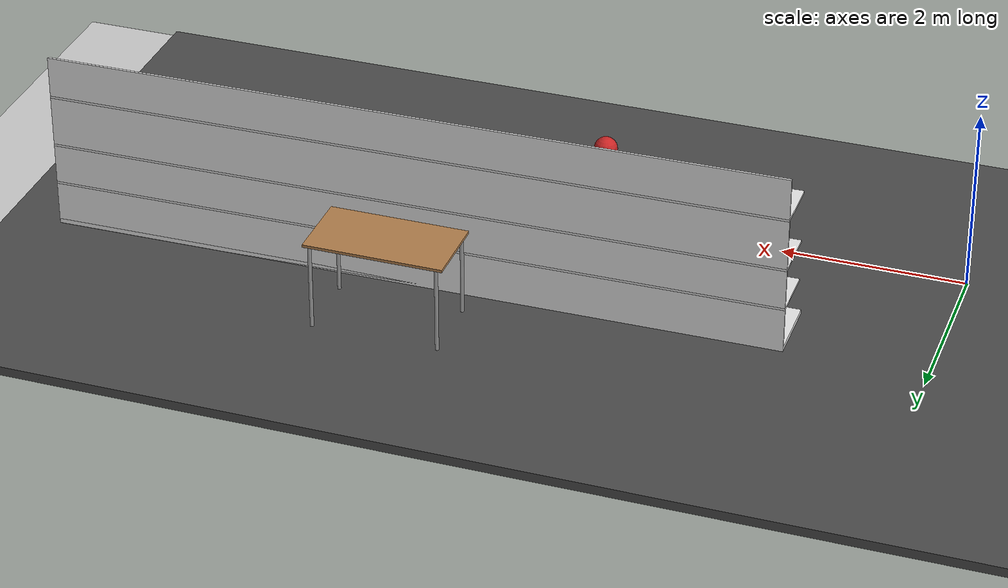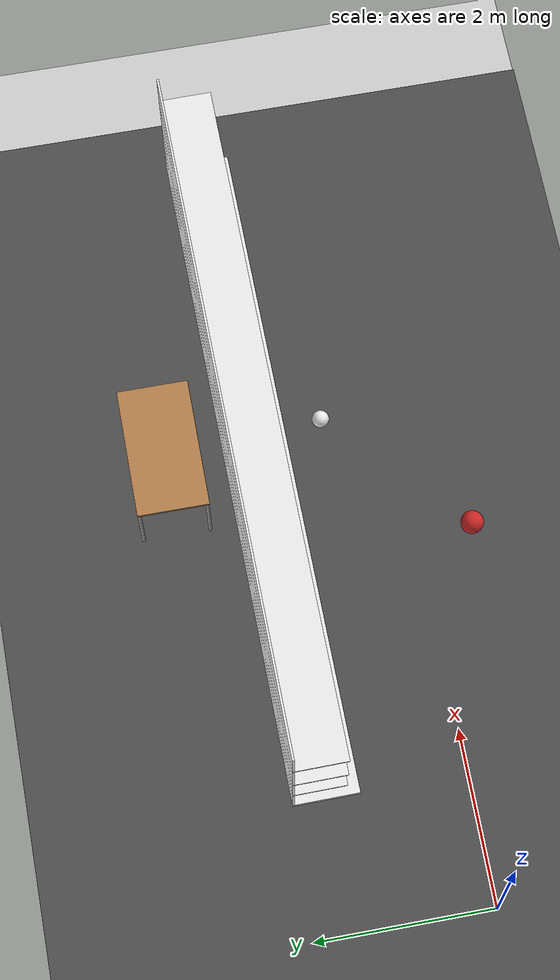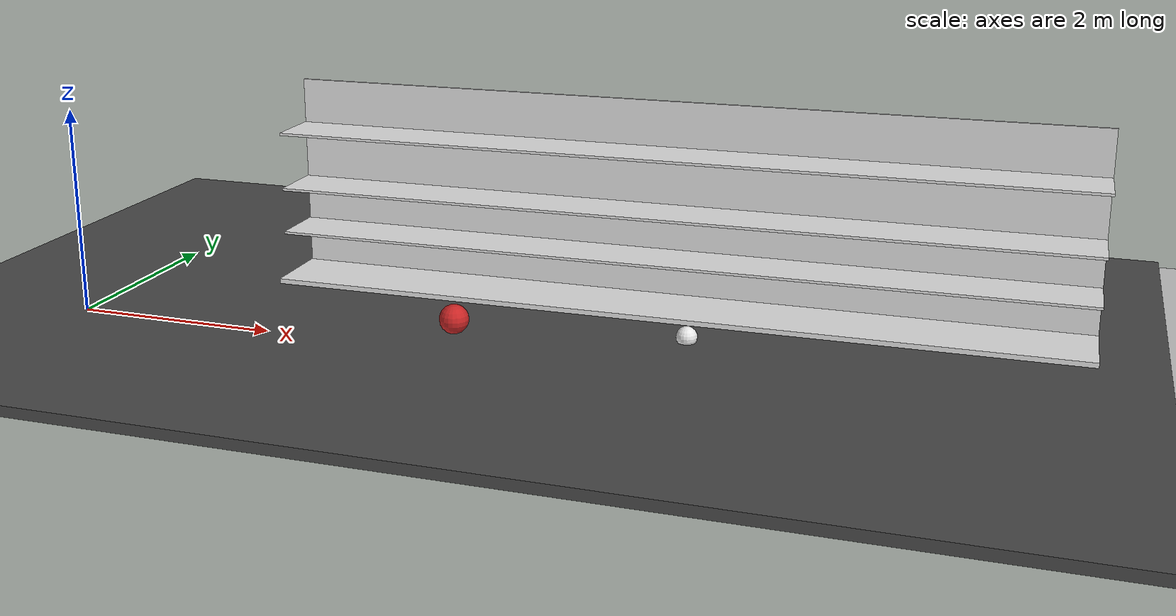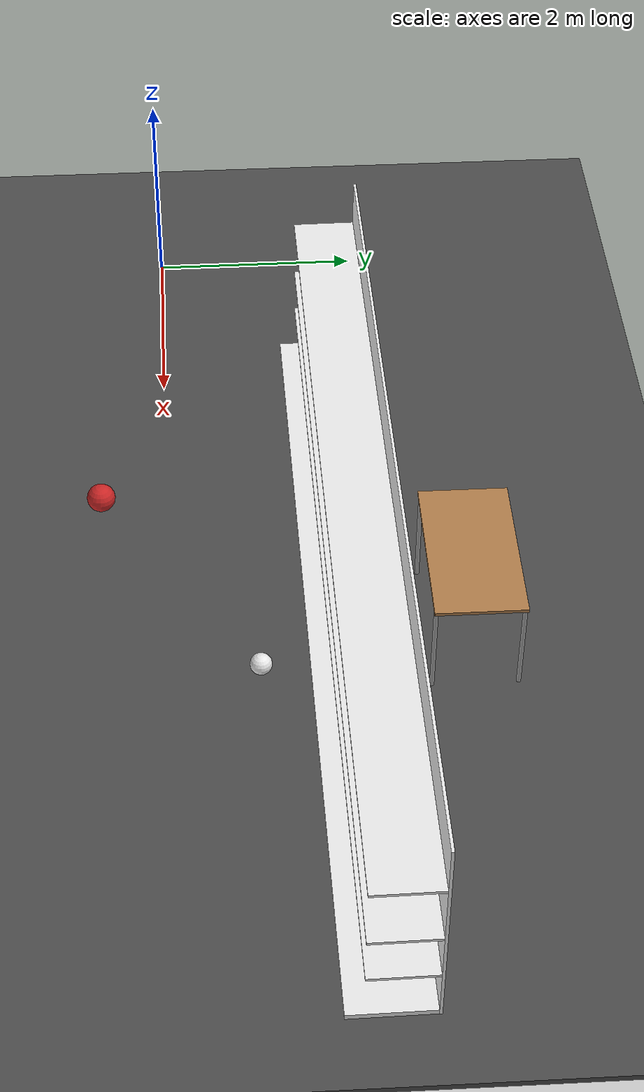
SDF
<sdf version="1.6">
 <world name="default">
  <model name="ground_plane">
   <static>1</static>
   <link name="link">
    <collision name="collision">
     <geometry><plane><normal>0 0 1</normal><size>100 100</size></plane></geometry>
     <surface>
      <contact><collide_bitmask>65535</collide_bitmask></contact>
      <friction><ode><mu>100</mu><mu2>50</mu2></ode></friction>
     </surface>
    </collision>
    <visual name="visual">
     <cast_shadows>0</cast_shadows>
     <geometry><plane><normal>0 0 1</normal><size>100 100</size></plane></geometry>
     <material>
      <script><uri>file://media/materials/scripts/gazebo.material</uri><name>Gazebo/Grey</name></script>
     </material>
    </visual>
   </link>
  </model>
  <model name="asphalt_plane">
   <static>1</static>
   <link name="link">
    <collision name="collision"><geometry><box><size>20 23.3157 0.1</size></box></geometry></collision>
    <visual name="visual">
     <cast_shadows>0</cast_shadows>
     <geometry><box><size>20 23.3157 0.1</size></box></geometry>
     <material>
      <script>
       <uri>model://asphalt_plane/materials/scripts</uri>
       <uri>model://asphalt_plane/materials/textures</uri>
       <name>vrc/asphalt</name>
      </script>
     </material>
    </visual>
   </link>
   <pose>0.082168 -0.989597 0 0 -0 0</pose>
  </model>
  <model name="LongShelfx4_clone">
   <link name="link_0">
    <inertial>
     <mass>0.38468</mass>
     <inertia>
      <ixx>0.0321196</ixx>
      <ixy>0</ixy>
      <ixz>0</ixz>
      <iyy>2.41752</iyy>
      <iyz>0</iyz>
      <izz>2.44951</izz>
     </inertia>
    </inertial>
    <pose>-4.95428 0.681381 -0.638013 0 -0 0</pose>
    <visual name="visual">
     <geometry><box><size>8 0.75 0.05</size></box></geometry>
     <material>
      <lighting>1</lighting>
      <script><uri>file://media/materials/scripts/gazebo.material</uri><name>Gazebo/White</name></script>
      <shader type="vertex"><normal_map>__default__</normal_map></shader>
      <ambient>0.3 0.3 0.3 1</ambient>
      <diffuse>0.7 0.7 0.7 1</diffuse>
      <specular>0.01 0.01 0.01 1</specular>
      <emissive>0 0 0 1</emissive>
     </material>
    </visual>
    <collision name="collision">
     <geometry><box><size>8 0.75 0.05</size></box></geometry>
     <surface>
      <friction>
       <ode><mu>1</mu><mu2>1</mu2><fdir1>0 0 0</fdir1><slip1>0</slip1><slip2>0</slip2></ode>
       <torsional>
        <coefficient>1</coefficient>
        <patch_radius>0</patch_radius>
        <surface_radius>0</surface_radius>
        <use_patch_radius>1</use_patch_radius>
        <ode><slip>0</slip></ode>
       </torsional>
      </friction>
      <bounce><restitution_coefficient>0</restitution_coefficient><threshold>1e+06</threshold></bounce>
      <contact>
       <collide_without_contact>0</collide_without_contact>
       <collide_without_contact_bitmask>1</collide_without_contact_bitmask>
       <collide_bitmask>1</collide_bitmask>
       <ode>
        <soft_cfm>0</soft_cfm>
        <soft_erp>0.2</soft_erp>
        <kp>1e+13</kp>
        <kd>1</kd>
        <max_vel>0.01</max_vel>
        <min_depth>0</min_depth>
       </ode>
       <bullet>
        <split_impulse>1</split_impulse>
        <split_impulse_penetration_threshold>-0.01</split_impulse_penetration_threshold>
        <soft_cfm>0</soft_cfm>
        <soft_erp>0.2</soft_erp>
        <kp>1e+13</kp>
        <kd>1</kd>
       </bullet>
      </contact>
     </surface>
    </collision>
   </link>
   <link name="link_1">
    <inertial>
     <mass>0.748605</mass>
     <inertia><ixx>0.445095</ixx><ixy>0</ixy><ixz>0</ixz><iyy>5.12268</iyy><iyz>0</iyz><izz>4.67771</izz></inertia>
    </inertial>
    <pose>-4.95468 0.318881 0.335328 0 -0 0</pose>
    <visual name="visual">
     <geometry><box><size>8 0.025 2</size></box></geometry>
     <material>
      <lighting>1</lighting>
      <script><uri>file://media/materials/scripts/gazebo.material</uri><name>Gazebo/White</name></script>
      <shader type="vertex"><normal_map>__default__</normal_map></shader>
      <ambient>0.3 0.3 0.3 1</ambient>
      <diffuse>0.7 0.7 0.7 1</diffuse>
      <specular>0.01 0.01 0.01 1</specular>
      <emissive>0 0 0 1</emissive>
     </material>
    </visual>
    <collision name="collision">
     <geometry><box><size>8 0.025 2</size></box></geometry>
     <surface>
      <friction>
       <ode><mu>1</mu><mu2>1</mu2><fdir1>0 0 0</fdir1><slip1>0</slip1><slip2>0</slip2></ode>
       <torsional>
        <coefficient>1</coefficient>
        <patch_radius>0</patch_radius>
        <surface_radius>0</surface_radius>
        <use_patch_radius>1</use_patch_radius>
        <ode><slip>0</slip></ode>
       </torsional>
      </friction>
      <bounce><restitution_coefficient>0</restitution_coefficient><threshold>1e+06</threshold></bounce>
      <contact>
       <collide_without_contact>0</collide_without_contact>
       <collide_without_contact_bitmask>1</collide_without_contact_bitmask>
       <collide_bitmask>1</collide_bitmask>
       <ode>
        <soft_cfm>0</soft_cfm>
        <soft_erp>0.2</soft_erp>
        <kp>1e+13</kp>
        <kd>1</kd>
        <max_vel>0.01</max_vel>
        <min_depth>0</min_depth>
       </ode>
       <bullet>
        <split_impulse>1</split_impulse>
        <split_impulse_penetration_threshold>-0.01</split_impulse_penetration_threshold>
        <soft_cfm>0</soft_cfm>
        <soft_erp>0.2</soft_erp>
        <kp>1e+13</kp>
        <kd>1</kd>
       </bullet>
      </contact>
     </surface>
    </collision>
   </link>
   <link name="link_2">
    <inertial>
     <mass>0.0597214</mass>
     <inertia>
      <ixx>0.00742007</ixx>
      <ixy>0</ixy>
      <ixz>0</ixz>
      <iyy>0.00498871</iyy>
      <iyz>0</iyz>
      <izz>0.0123849</izz>
     </inertia>
    </inertial>
    <pose>-4.95438 0.606368 0.295639 0 -0 0</pose>
    <visual name="visual">
     <geometry><box><size>8 0.6 0.025</size></box></geometry>
     <material>
      <lighting>1</lighting>
      <script><uri>file://media/materials/scripts/gazebo.material</uri><name>Gazebo/White</name></script>
      <shader type="vertex"><normal_map>__default__</normal_map></shader>
      <ambient>0.3 0.3 0.3 1</ambient>
      <diffuse>0.7 0.7 0.7 1</diffuse>
      <specular>0.01 0.01 0.01 1</specular>
      <emissive>0 0 0 1</emissive>
     </material>
    </visual>
    <collision name="collision">
     <geometry><box><size>8 0.600001 0.025</size></box></geometry>
     <surface>
      <friction>
       <ode><mu>1</mu><mu2>1</mu2><fdir1>0 0 0</fdir1><slip1>0</slip1><slip2>0</slip2></ode>
       <torsional>
        <coefficient>1</coefficient>
        <patch_radius>0</patch_radius>
        <surface_radius>0</surface_radius>
        <use_patch_radius>1</use_patch_radius>
        <ode><slip>0</slip></ode>
       </torsional>
      </friction>
      <bounce><restitution_coefficient>0</restitution_coefficient><threshold>1e+06</threshold></bounce>
      <contact>
       <collide_without_contact>0</collide_without_contact>
       <collide_without_contact_bitmask>1</collide_without_contact_bitmask>
       <collide_bitmask>1</collide_bitmask>
       <ode>
        <soft_cfm>0</soft_cfm>
        <soft_erp>0.2</soft_erp>
        <kp>1e+13</kp>
        <kd>1</kd>
        <max_vel>0.01</max_vel>
        <min_depth>0</min_depth>
       </ode>
       <bullet>
        <split_impulse>1</split_impulse>
        <split_impulse_penetration_threshold>-0.01</split_impulse_penetration_threshold>
        <soft_cfm>0</soft_cfm>
        <soft_erp>0.2</soft_erp>
        <kp>1e+13</kp>
        <kd>1</kd>
       </bullet>
      </contact>
     </surface>
    </collision>
   </link>
   <link name="link_2_clone">
    <inertial>
     <mass>0.0597214</mass>
     <inertia>
      <ixx>0.00742007</ixx>
      <ixy>0</ixy>
      <ixz>0</ixz>
      <iyy>0.00498871</iyy>
      <iyz>0</iyz>
      <izz>0.0123849</izz>
     </inertia>
    </inertial>
    <pose>-4.95438 0.606361 0.871858 0 -0 0</pose>
    <visual name="visual">
     <geometry><box><size>8 0.6 0.025</size></box></geometry>
     <material>
      <lighting>1</lighting>
      <script><uri>file://media/materials/scripts/gazebo.material</uri><name>Gazebo/White</name></script>
      <shader type="vertex"><normal_map>__default__</normal_map></shader>
      <ambient>0.3 0.3 0.3 1</ambient>
      <diffuse>0.7 0.7 0.7 1</diffuse>
      <specular>0.01 0.01 0.01 1</specular>
      <emissive>0 0 0 1</emissive>
     </material>
    </visual>
    <collision name="collision">
     <geometry><box><size>8 0.600001 0.025</size></box></geometry>
     <surface>
      <friction>
       <ode><mu>1</mu><mu2>1</mu2><fdir1>0 0 0</fdir1><slip1>0</slip1><slip2>0</slip2></ode>
       <torsional>
        <coefficient>1</coefficient>
        <patch_radius>0</patch_radius>
        <surface_radius>0</surface_radius>
        <use_patch_radius>1</use_patch_radius>
        <ode><slip>0</slip></ode>
       </torsional>
      </friction>
      <bounce><restitution_coefficient>0</restitution_coefficient><threshold>1e+06</threshold></bounce>
      <contact>
       <collide_without_contact>0</collide_without_contact>
       <collide_without_contact_bitmask>1</collide_without_contact_bitmask>
       <collide_bitmask>1</collide_bitmask>
       <ode>
        <soft_cfm>0</soft_cfm>
        <soft_erp>0.2</soft_erp>
        <kp>1e+13</kp>
        <kd>1</kd>
        <max_vel>0.01</max_vel>
        <min_depth>0</min_depth>
       </ode>
       <bullet>
        <split_impulse>1</split_impulse>
        <split_impulse_penetration_threshold>-0.01</split_impulse_penetration_threshold>
        <soft_cfm>0</soft_cfm>
        <soft_erp>0.2</soft_erp>
        <kp>1e+13</kp>
        <kd>1</kd>
       </bullet>
      </contact>
     </surface>
    </collision>
   </link>
   <link name="link_2_clone_0">
    <inertial>
     <mass>0.0597214</mass>
     <inertia>
      <ixx>0.00742007</ixx>
      <ixy>0</ixy>
      <ixz>0</ixz>
      <iyy>0.00498871</iyy>
      <iyz>0</iyz>
      <izz>0.0123849</izz>
     </inertia>
    </inertial>
    <pose>-4.95438 0.606375 -0.163574 0 -0 0</pose>
    <visual name="visual">
     <geometry><box><size>8 0.6 0.025</size></box></geometry>
     <material>
      <lighting>1</lighting>
      <script><uri>file://media/materials/scripts/gazebo.material</uri><name>Gazebo/White</name></script>
      <shader type="vertex"><normal_map>__default__</normal_map></shader>
      <ambient>0.3 0.3 0.3 1</ambient>
      <diffuse>0.7 0.7 0.7 1</diffuse>
      <specular>0.01 0.01 0.01 1</specular>
      <emissive>0 0 0 1</emissive>
     </material>
    </visual>
    <collision name="collision">
     <geometry><box><size>8 0.600001 0.025</size></box></geometry>
     <surface>
      <friction>
       <ode><mu>1</mu><mu2>1</mu2><fdir1>0 0 0</fdir1><slip1>0</slip1><slip2>0</slip2></ode>
       <torsional>
        <coefficient>1</coefficient>
        <patch_radius>0</patch_radius>
        <surface_radius>0</surface_radius>
        <use_patch_radius>1</use_patch_radius>
        <ode><slip>0</slip></ode>
       </torsional>
      </friction>
      <bounce><restitution_coefficient>0</restitution_coefficient><threshold>1e+06</threshold></bounce>
      <contact>
       <collide_without_contact>0</collide_without_contact>
       <collide_without_contact_bitmask>1</collide_without_contact_bitmask>
       <collide_bitmask>1</collide_bitmask>
       <ode>
        <soft_cfm>0</soft_cfm>
        <soft_erp>0.2</soft_erp>
        <kp>1e+13</kp>
        <kd>1</kd>
        <max_vel>0.01</max_vel>
        <min_depth>0</min_depth>
       </ode>
       <bullet>
        <split_impulse>1</split_impulse>
        <split_impulse_penetration_threshold>-0.01</split_impulse_penetration_threshold>
        <soft_cfm>0</soft_cfm>
        <soft_erp>0.2</soft_erp>
        <kp>1e+13</kp>
        <kd>1</kd>
       </bullet>
      </contact>
     </surface>
    </collision>
   </link>
   <joint name="link_1_JOINT_4" type="fixed">
    <parent>link_1</parent>
    <child>link_0</child>
    <physics>
     <ode><limit><cfm>0</cfm><erp>0.2</erp></limit><suspension><cfm>0</cfm><erp>0.2</erp></suspension></ode>
    </physics>
   </joint>
   <joint name="link_1_JOINT_5" type="fixed">
    <parent>link_1</parent>
    <child>link_2_clone_0</child>
    <physics>
     <ode><limit><cfm>0</cfm><erp>0.2</erp></limit><suspension><cfm>0</cfm><erp>0.2</erp></suspension></ode>
    </physics>
   </joint>
   <joint name="link_1_JOINT_6" type="fixed">
    <parent>link_1</parent>
    <child>link_2</child>
    <physics>
     <ode><limit><cfm>0</cfm><erp>0.2</erp></limit><suspension><cfm>0</cfm><erp>0.2</erp></suspension></ode>
    </physics>
   </joint>
   <joint name="link_1_JOINT_7" type="fixed">
    <parent>link_1</parent>
    <child>link_2_clone</child>
    <physics>
     <ode><limit><cfm>0</cfm><erp>0.2</erp></limit><suspension><cfm>0</cfm><erp>0.2</erp></suspension></ode>
    </physics>
   </joint>
   <static>0</static>
   <pose>0.51368 2.24347 0.715429 -0.002288 0 -3.131</pose>
  </model>
  <model name="table_clone_0">
   <static>1</static>
   <link name="link">
    <collision name="surface">
     <pose>0 0 1 0 -0 0</pose>
     <geometry><box><size>1.5 0.8 0.03</size></box></geometry>
     <surface><friction><ode><mu>0.6</mu><mu2>0.6</mu2></ode></friction></surface>
    </collision>
    <visual name="visual1">
     <pose>0 0 1 0 -0 0</pose>
     <geometry><box><size>1.5 0.8 0.03</size></box></geometry>
     <material>
      <script><uri>file://media/materials/scripts/gazebo.material</uri><name>Gazebo/Wood</name></script>
     </material>
    </visual>
    <collision name="front_left_leg">
     <pose>0.68 0.38 0.5 0 -0 0</pose>
     <geometry><cylinder><radius>0.02</radius><length>1</length></cylinder></geometry>
    </collision>
    <visual name="front_left_leg">
     <pose>0.68 0.38 0.5 0 -0 0</pose>
     <geometry><cylinder><radius>0.02</radius><length>1</length></cylinder></geometry>
     <material>
      <script><uri>file://media/materials/scripts/gazebo.material</uri><name>Gazebo/Grey</name></script>
     </material>
    </visual>
    <collision name="front_right_leg">
     <pose>0.68 -0.38 0.5 0 -0 0</pose>
     <geometry><cylinder><radius>0.02</radius><length>1</length></cylinder></geometry>
    </collision>
    <visual name="front_right_leg">
     <pose>0.68 -0.38 0.5 0 -0 0</pose>
     <geometry><cylinder><radius>0.02</radius><length>1</length></cylinder></geometry>
     <material>
      <script><uri>file://media/materials/scripts/gazebo.material</uri><name>Gazebo/Grey</name></script>
     </material>
    </visual>
    <collision name="back_right_leg">
     <pose>-0.68 -0.38 0.5 0 -0 0</pose>
     <geometry><cylinder><radius>0.02</radius><length>1</length></cylinder></geometry>
    </collision>
    <visual name="back_right_leg">
     <pose>-0.68 -0.38 0.5 0 -0 0</pose>
     <geometry><cylinder><radius>0.02</radius><length>1</length></cylinder></geometry>
     <material>
      <script><uri>file://media/materials/scripts/gazebo.material</uri><name>Gazebo/Grey</name></script>
     </material>
    </visual>
    <collision name="back_left_leg">
     <pose>-0.68 0.38 0.5 0 -0 0</pose>
     <geometry><cylinder><radius>0.02</radius><length>1</length></cylinder></geometry>
    </collision>
    <visual name="back_left_leg">
     <pose>-0.68 0.38 0.5 0 -0 0</pose>
     <geometry><cylinder><radius>0.02</radius><length>1</length></cylinder></geometry>
     <material>
      <script><uri>file://media/materials/scripts/gazebo.material</uri><name>Gazebo/Grey</name></script>
     </material>
    </visual>
   </link>
   <pose>5.46734 2.66741 0 0 -0 0</pose>
  </model>
  <model name="my_ball">
   <link name="link">
    <inertial>
     <mass>1</mass>
     <inertia><ixx>0.1</ixx><ixy>0</ixy><ixz>0</ixz><iyy>0.1</iyy><iyz>0</iyz><izz>0.1</izz></inertia>
    </inertial>
    <visual name="visual">
     <geometry><sphere><radius>0.1</radius></sphere></geometry>
     <material>
      <script><name>Gazebo/White</name><uri>file://media/materials/scripts/gazebo.material</uri></script>
      <shader type="vertex"><normal_map>__default__</normal_map></shader>
      <ambient>1 1 1 1</ambient>
      <diffuse>1 1 1 1</diffuse>
      <specular>1 1 1 1</specular>
      <emissive>1 1 1 1</emissive>
     </material>
    </visual>
    <collision name="collision">
     <geometry><sphere><radius>0.1</radius></sphere></geometry>
     <surface>
      <friction>
       <ode><mu>1</mu><mu2>1</mu2><fdir1>0 0 0</fdir1><slip1>0</slip1><slip2>0</slip2></ode>
       <torsional>
        <coefficient>1</coefficient>
        <patch_radius>0</patch_radius>
        <surface_radius>0</surface_radius>
        <use_patch_radius>1</use_patch_radius>
        <ode><slip>0</slip></ode>
       </torsional>
      </friction>
      <bounce><restitution_coefficient>0</restitution_coefficient><threshold>1e+06</threshold></bounce>
      <contact>
       <collide_without_contact>0</collide_without_contact>
       <collide_without_contact_bitmask>1</collide_without_contact_bitmask>
       <collide_bitmask>1</collide_bitmask>
       <ode>
        <soft_cfm>0</soft_cfm>
        <soft_erp>0.2</soft_erp>
        <kp>1e+13</kp>
        <kd>1</kd>
        <max_vel>0.01</max_vel>
        <min_depth>0</min_depth>
       </ode>
       <bullet>
        <split_impulse>1</split_impulse>
        <split_impulse_penetration_threshold>-0.01</split_impulse_penetration_threshold>
        <soft_cfm>0</soft_cfm>
        <soft_erp>0.2</soft_erp>
        <kp>1e+13</kp>
        <kd>1</kd>
       </bullet>
      </contact>
     </surface>
    </collision>
   </link>
   <static>0</static>
   <pose>5.872 0.812839 0.1 0 -0 0</pose>
  </model>
  <model name="my_ball_1">
   <link name="link">
    <inertial>
     <mass>1</mass>
     <inertia><ixx>0.1</ixx><ixy>0</ixy><ixz>0</ixz><iyy>0.1</iyy><iyz>0</iyz><izz>0.1</izz></inertia>
    </inertial>
    <visual name="visual">
     <geometry><sphere><radius>0.13</radius></sphere></geometry>
     <material>
      <script><name>Gazebo/Red</name><uri>file://media/materials/scripts/gazebo.material</uri></script>
      <shader type="vertex"><normal_map>__default__</normal_map></shader>
      <ambient>1 0 0 1</ambient>
      <diffuse>1 0 0 1</diffuse>
      <specular>0.1 0.1 0.1 1</specular>
      <emissive>0 0 0 1</emissive>
     </material>
    </visual>
    <collision name="collision">
     <geometry><sphere><radius>0.1</radius></sphere></geometry>
     <surface>
      <friction>
       <ode><mu>1</mu><mu2>1</mu2><fdir1>0 0 0</fdir1><slip1>0</slip1><slip2>0</slip2></ode>
       <torsional>
        <coefficient>1</coefficient>
        <patch_radius>0</patch_radius>
        <surface_radius>0</surface_radius>
        <use_patch_radius>1</use_patch_radius>
        <ode><slip>0</slip></ode>
       </torsional>
      </friction>
      <bounce><restitution_coefficient>0</restitution_coefficient><threshold>1e+06</threshold></bounce>
      <contact>
       <collide_without_contact>0</collide_without_contact>
       <collide_without_contact_bitmask>1</collide_without_contact_bitmask>
       <collide_bitmask>1</collide_bitmask>
       <ode>
        <soft_cfm>0</soft_cfm>
        <soft_erp>0.2</soft_erp>
        <kp>1e+13</kp>
        <kd>1</kd>
        <max_vel>0.01</max_vel>
        <min_depth>0</min_depth>
       </ode>
       <bullet>
        <split_impulse>1</split_impulse>
        <split_impulse_penetration_threshold>-0.01</split_impulse_penetration_threshold>
        <soft_cfm>0</soft_cfm>
        <soft_erp>0.2</soft_erp>
        <kp>1e+13</kp>
        <kd>1</kd>
       </bullet>
      </contact>
     </surface>
    </collision>
   </link>
   <static>0</static>
   <pose>4.15076 -0.574258 0.55 0 -0 0</pose>
  </model>
 </world>
</sdf>
